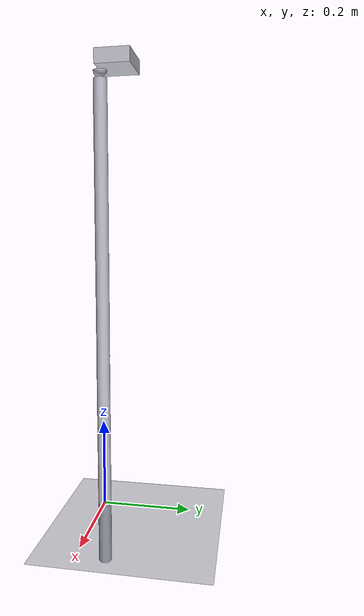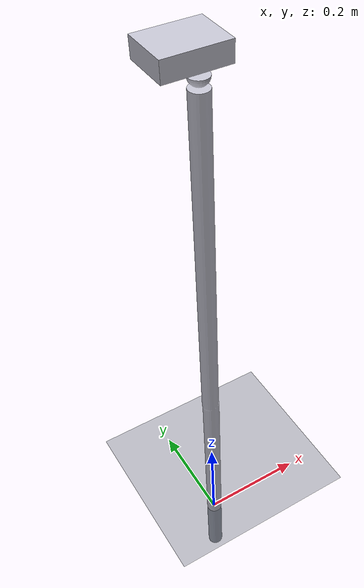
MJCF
<mujoco model="two_link_model_scene">
  <compiler angle="degree" coordinate="local"/>
  <option timestep="0.001" gravity="0 0 -9.81"/>

  <visual>
    <headlight ambient="0.45 0.45 0.45" diffuse="0.7 0.7 0.7" specular="0.1 0.1 0.1"/>
  </visual>

  <asset>
    <!-- OBJ imported from assets/meshes/ -->
    <mesh name="two_link_mesh" file="../meshes/Two_link_model.obj" scale="0.01 0.01 0.01"/>
  </asset>

  <worldbody>
    <light name="key_light" pos="0 0 4" dir="0 0 -1" directional="true"/>
    <camera name="overview" pos="2.0 -2.0 2.0" xyaxes="0.707 0.707 0 -0.35 0.35 0.87"/>
    <geom name="ground" type="plane" pos="0 0 0" size="5 5 0.1" rgba="0.15 0.2 0.25 1"/>

    <!-- Shift mesh up so imported model is visible near origin -->
    <body name="two_link_model" pos="0 0 1.0">
      <geom
        name="two_link_visual"
        type="mesh"
        mesh="two_link_mesh"
        rgba="0.75 0.75 0.8 1"
        contype="0"
        conaffinity="0"/>
    </body>
  </worldbody>
</mujoco>
